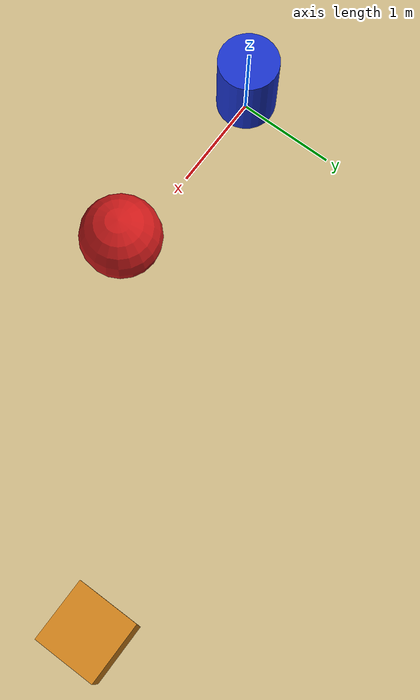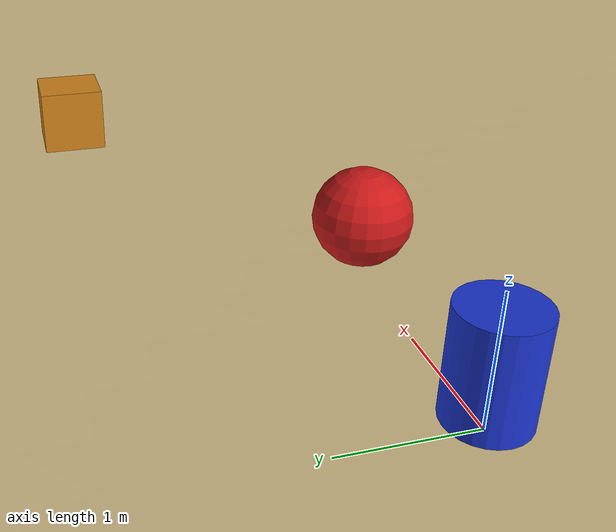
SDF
<?xml version="1.0"?>
<sdf version="1.8">
  <world name="beach_world">
    <!-- Plugins do Sistema da Simulação -->
    <plugin filename="gz-sim-physics-system" name="gz::sim::systems::Physics"/>
    <plugin filename="gz-sim-scene-broadcaster-system" name="gz::sim::systems::SceneBroadcaster"/>
    <plugin filename="gz-sim-user-commands-system" name="gz::sim::systems::UserCommands"/>
    <plugin filename="gz-sim-sensors-system" name="gz::sim::systems::Sensors">
      <render_engine>ogre2</render_engine>
    </plugin>

    <!-- Plugin para gerenciar animações/movimentos dinâmicos -->
    <plugin filename="gz-sim-trajectory-follower-system" name="gz::sim::systems::TrajectoryFollower"/>

    <scene>
      <ambient>0.6 0.6 0.6 1</ambient>
      <background>0.5 0.8 1.0 1</background>
      <shadows>true</shadows>
    </scene>

    <light type="directional" name="sun">
      <cast_shadows>true</cast_shadows>
      <pose>0 0 10 0 0 0</pose>
      <diffuse>1.0 1.0 1.0 1</diffuse>
      <specular>0.4 0.4 0.4 1</specular>
      <direction>-0.5 0.1 -0.9</direction>
    </light>

    <model name="sandy_terrain">
      <static>true</static>
      <link name="link">
        <collision name="collision">
          <geometry>
            <plane>
              <normal>0 0 1</normal>
              <size>100 100</size>
            </plane>
          </geometry>
          <surface>
            <friction>
              <ode>
                <mu>100</mu>
                <mu2>50</mu2>
              </ode>
            </friction>
          </surface>
        </collision>
        <visual name="visual">
          <geometry>
            <mesh>
              <uri>file:///home/lauraluna/ackermann_sim/src/ackermann-vehicle-gzsim-ros2/saye_description/worlds/media/dune_terrain.obj</uri>
              <scale>1 1 1</scale>
            </mesh>
          </geometry>
          <material>
            <ambient>0.76 0.69 0.50 1</ambient>
            <diffuse>0.80 0.72 0.52 1</diffuse>
            <specular>0.05 0.05 0.05 1</specular>
          </material>
        </visual>
      </link>
    </model>

    <!-- OBSTÁCULO DINÂMICO 1: Pedestre / Obstáculo Vermelho (Movimento Vai e Vem no Eixo Y) -->
    <model name="dynamic_obstacle_sphere">
      <pose>2.0 0.0 0.5 0 0 0</pose>
      <static>false</static>

      <plugin filename="gz-sim-trajectory-follower-system" name="gz::sim::systems::TrajectoryFollower">
        <link_name>link</link_name>
        <loop>true</loop>
        <force>15</force>
        <torque>15</torque>
        <waypoints>
          <waypoint>2.0 -3.0</waypoint>
          <waypoint>2.0 3.0</waypoint>
        </waypoints>
      </plugin>

      <link name="link">
        <inertial>
          <mass>1.0</mass>
          <inertia>
            <ixx>0.064</ixx><ixy>0</ixy><ixz>0</ixz>
            <iyy>0.064</iyy><iyz>0</iyz>
            <izz>0.064</izz>
          </inertia>
        </inertial>
        <visual name="visual">
          <geometry>
            <sphere><radius>0.4</radius></sphere>
          </geometry>
          <material>
            <ambient>0.8 0.1 0.1 1</ambient>
            <diffuse>0.8 0.1 0.1 1</diffuse>
          </material>
        </visual>
        <collision name="collision">
          <geometry>
            <sphere><radius>0.4</radius></sphere>
          </geometry>
          <!-- o terreno tem mu=100 (calibrado pro atrito do rover); sem
               isso aqui o obstaculo herda esse atrito enorme e nenhuma
               forca razoavel do TrajectoryFollower consegue move-lo -->
          <surface>
            <friction>
              <ode><mu>1.0</mu><mu2>1.0</mu2></ode>
            </friction>
          </surface>
        </collision>
      </link>
    </model>

    <!-- OBSTÁCULO DINÂMICO 2: Caixote (Movimento Horizontal no Eixo X) -->
    <model name="dynamic_obstacle_box">
      <pose>5.0 2.0 0.5 0 0 0</pose>
      <static>false</static>

      <plugin filename="gz-sim-trajectory-follower-system" name="gz::sim::systems::TrajectoryFollower">
        <link_name>link</link_name>
        <loop>true</loop>
        <force>15</force>
        <torque>15</torque>
        <waypoints>
          <waypoint>3.0 2.0</waypoint>
          <waypoint>7.0 2.0</waypoint>
        </waypoints>
      </plugin>

      <link name="link">
        <inertial>
          <mass>1.0</mass>
          <inertia>
            <ixx>0.06</ixx><ixy>0</ixy><ixz>0</ixz>
            <iyy>0.06</iyy><iyz>0</iyz>
            <izz>0.06</izz>
          </inertia>
        </inertial>
        <visual name="visual">
          <geometry>
            <box><size>0.6 0.6 0.6</size></box>
          </geometry>
          <material>
            <ambient>0.8 0.5 0.1 1</ambient>
            <diffuse>0.8 0.5 0.1 1</diffuse>
          </material>
        </visual>
        <collision name="collision">
          <geometry>
            <box><size>0.6 0.6 0.6</size></box>
          </geometry>
          <surface>
            <friction>
              <ode><mu>1.0</mu><mu2>1.0</mu2></ode>
            </friction>
          </surface>
        </collision>
      </link>
    </model>

    <!-- OBSTÁCULO DINÂMICO 3: Barril/Cilindro (Patrulha Retangular em Loop) -->
    <model name="dynamic_obstacle_cylinder">
      <pose>0.0 0.0 0.5 0 0 0</pose>
      <static>false</static>

      <plugin filename="gz-sim-trajectory-follower-system" name="gz::sim::systems::TrajectoryFollower">
        <link_name>link</link_name>
        <loop>true</loop>
        <force>15</force>
        <torque>15</torque>
        <waypoints>
          <waypoint>1.0 1.0</waypoint>
          <waypoint>4.0 1.0</waypoint>
          <waypoint>4.0 4.0</waypoint>
          <waypoint>1.0 4.0</waypoint>
        </waypoints>
      </plugin>

      <link name="link">
        <inertial>
          <mass>1.0</mass>
          <inertia>
            <ixx>0.0758</ixx><ixy>0</ixy><ixz>0</ixz>
            <iyy>0.0758</iyy><iyz>0</iyz>
            <izz>0.045</izz>
          </inertia>
        </inertial>
        <visual name="visual">
          <geometry>
            <cylinder><radius>0.3</radius><length>0.8</length></cylinder>
          </geometry>
          <material>
            <ambient>0.1 0.2 0.8 1</ambient>
            <diffuse>0.1 0.2 0.8 1</diffuse>
          </material>
        </visual>
        <collision name="collision">
          <geometry>
            <cylinder><radius>0.3</radius><length>0.8</length></cylinder>
          </geometry>
          <surface>
            <friction>
              <ode><mu>1.0</mu><mu2>1.0</mu2></ode>
            </friction>
          </surface>
        </collision>
      </link>
    </model>

  </world>
</sdf>
